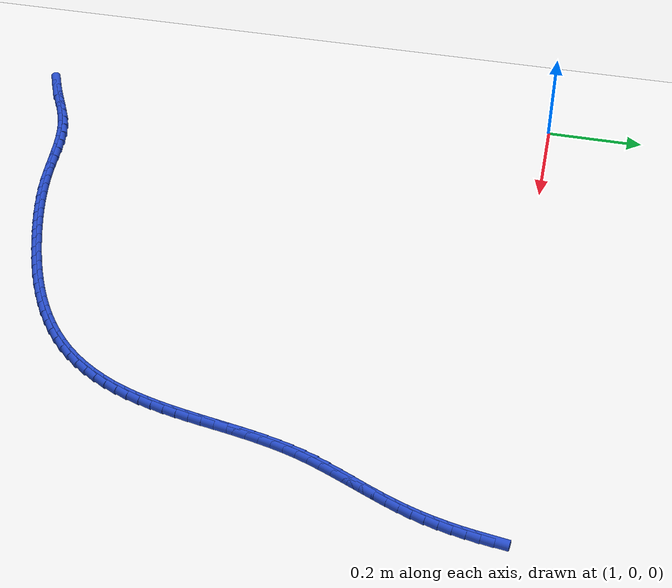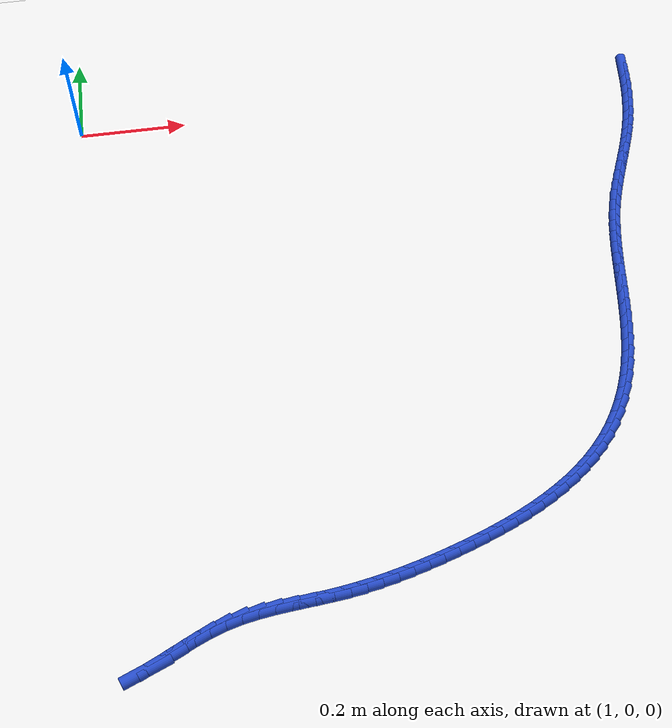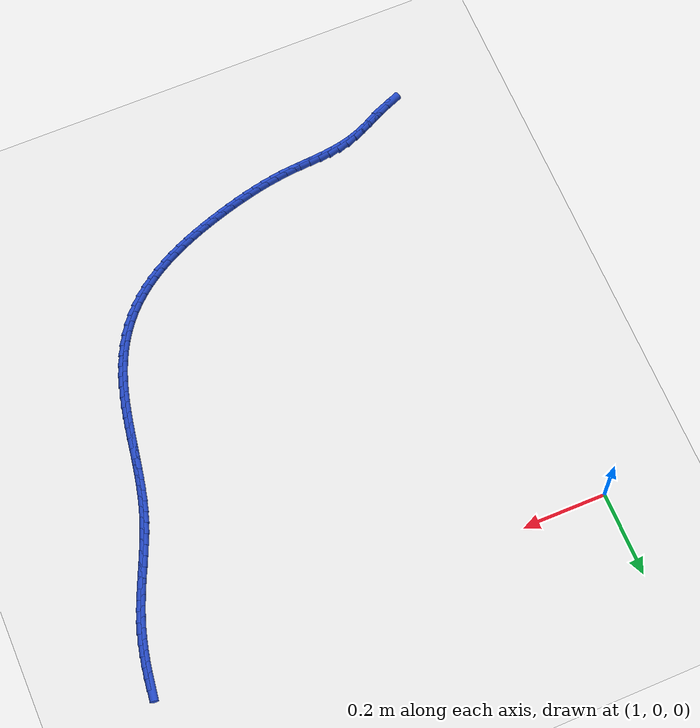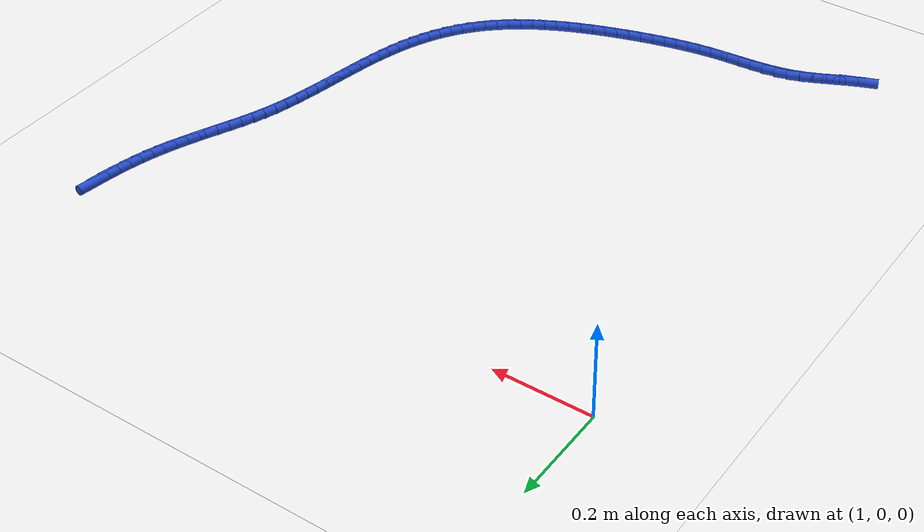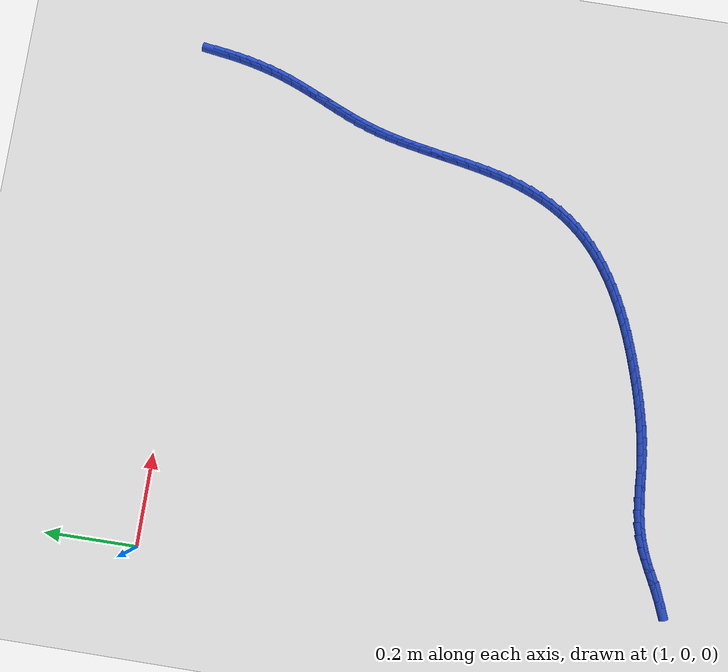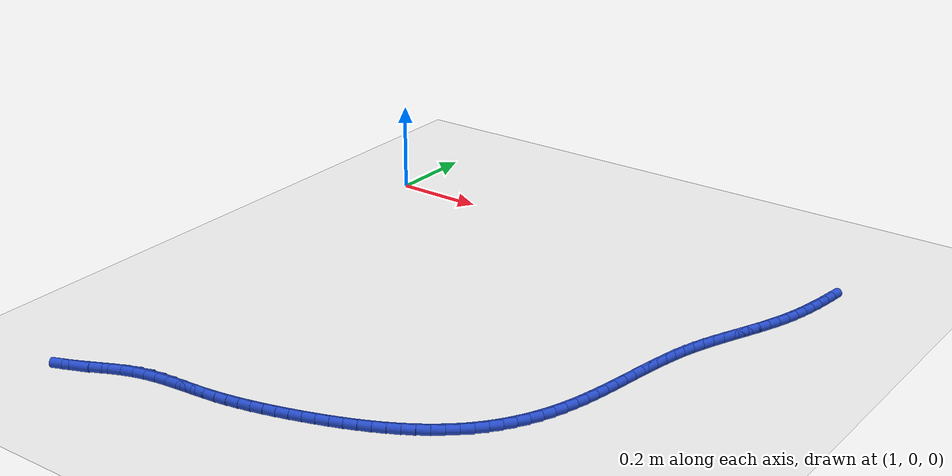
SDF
<sdf version="1.6">
 <world name="default">
  <model name="ground_plane">
   <static>1</static>
   <link name="link">
    <collision name="collision">
     <geometry><plane><normal>0 0 1</normal><size>100 100</size></plane></geometry>
     <surface><friction><ode><mu>100</mu><mu2>50</mu2></ode></friction></surface>
    </collision>
    <visual name="visual">
     <cast_shadows>0</cast_shadows>
     <geometry><plane><normal>0 0 1</normal><size>100 100</size></plane></geometry>
     <material>
      <script><uri>file://media/materials/scripts/gazebo.material</uri><name>Gazebo/WhiteGlow</name></script>
     </material>
    </visual>
   </link>
  </model>
  <model name="line">
   <link name="link_136">
    <pose>2.0923266257567166 0.006850373081256592 0.01 0 1.57 1.424594749346255</pose>
    <collision name="collision">
     <geometry><cylinder><radius>0.01</radius><length>0.08</length></cylinder></geometry>
    </collision>
    <visual name="visual">
     <material>
      <script><name>Gazebo/Blue</name><uri>file://media/materials/scripts/gazebo.material</uri></script>
     </material>
     <geometry><cylinder><radius>0.01</radius><length>0.08</length></cylinder></geometry>
    </visual>
   </link>
   <link name="link_137">
    <pose>2.0886421610577974 -0.0181710773590153 0.01 0 1.57 1.3965579894164302</pose>
    <collision name="collision">
     <geometry><cylinder><radius>0.01</radius><length>0.08</length></cylinder></geometry>
    </collision>
    <visual name="visual">
     <material>
      <script><name>Gazebo/Blue</name><uri>file://media/materials/scripts/gazebo.material</uri></script>
     </material>
     <geometry><cylinder><radius>0.01</radius><length>0.08</length></cylinder></geometry>
    </visual>
   </link>
   <link name="link_138">
    <pose>2.0842695752427405 -0.04301203345912321 0.01 0 1.57 1.3661616045245144</pose>
    <collision name="collision">
     <geometry><cylinder><radius>0.01</radius><length>0.08</length></cylinder></geometry>
    </collision>
    <visual name="visual">
     <material>
      <script><name>Gazebo/Blue</name><uri>file://media/materials/scripts/gazebo.material</uri></script>
     </material>
     <geometry><cylinder><radius>0.01</radius><length>0.08</length></cylinder></geometry>
    </visual>
   </link>
   <link name="link_139">
    <pose>2.0791552781034706 -0.06765452471634334 0.01 0 1.57 1.3334194105742312</pose>
    <collision name="collision">
     <geometry><cylinder><radius>0.01</radius><length>0.08</length></cylinder></geometry>
    </collision>
    <visual name="visual">
     <material>
      <script><name>Gazebo/Blue</name><uri>file://media/materials/scripts/gazebo.material</uri></script>
     </material>
     <geometry><cylinder><radius>0.01</radius><length>0.08</length></cylinder></geometry>
    </visual>
   </link>
   <link name="link_140">
    <pose>2.073245679431913 -0.09208058062795399 0.01 0 1.57 1.298369267174053</pose>
    <collision name="collision">
     <geometry><cylinder><radius>0.01</radius><length>0.08</length></cylinder></geometry>
    </collision>
    <visual name="visual">
     <material>
      <script><name>Gazebo/Blue</name><uri>file://media/materials/scripts/gazebo.material</uri></script>
     </material>
     <geometry><cylinder><radius>0.01</radius><length>0.08</length></cylinder></geometry>
    </visual>
   </link>
   <link name="link_141">
    <pose>2.066487189019994 -0.11627223069123356 0.01 0 1.57 1.2610780446091212</pose>
    <collision name="collision">
     <geometry><cylinder><radius>0.01</radius><length>0.08</length></cylinder></geometry>
    </collision>
    <visual name="visual">
     <material>
      <script><name>Gazebo/Blue</name><uri>file://media/materials/scripts/gazebo.material</uri></script>
     </material>
     <geometry><cylinder><radius>0.01</radius><length>0.08</length></cylinder></geometry>
    </visual>
   </link>
   <link name="link_142">
    <pose>2.0588262166596367 -0.14021150440345817 0.01 0 1.57 1.2231455278694143</pose>
    <collision name="collision">
     <geometry><cylinder><radius>0.01</radius><length>0.08</length></cylinder></geometry>
    </collision>
    <visual name="visual">
     <material>
      <script><name>Gazebo/Blue</name><uri>file://media/materials/scripts/gazebo.material</uri></script>
     </material>
     <geometry><cylinder><radius>0.01</radius><length>0.08</length></cylinder></geometry>
    </visual>
   </link>
   <link name="link_143">
    <pose>2.050245240225723 -0.16389175056670757 0.01 0 1.57 1.1922548836835354</pose>
    <collision name="collision">
     <geometry><cylinder><radius>0.01</radius><length>0.08</length></cylinder></geometry>
    </collision>
    <visual name="visual">
     <material>
      <script><name>Gazebo/Blue</name><uri>file://media/materials/scripts/gazebo.material</uri></script>
     </material>
     <geometry><cylinder><radius>0.01</radius><length>0.08</length></cylinder></geometry>
    </visual>
   </link>
   <link name="link_144">
    <pose>2.040909881189948 -0.18736379423421534 0.01 0 1.57 1.170754326881562</pose>
    <collision name="collision">
     <geometry><cylinder><radius>0.01</radius><length>0.08</length></cylinder></geometry>
    </collision>
    <visual name="visual">
     <material>
      <script><name>Gazebo/Blue</name><uri>file://media/materials/scripts/gazebo.material</uri></script>
     </material>
     <geometry><cylinder><radius>0.01</radius><length>0.08</length></cylinder></geometry>
    </visual>
   </link>
   <link name="link_145">
    <pose>2.0310437490470767 -0.2106966589342718 0.01 0 1.57 1.158536197623795</pose>
    <collision name="collision">
     <geometry><cylinder><radius>0.01</radius><length>0.08</length></cylinder></geometry>
    </collision>
    <visual name="visual">
     <material>
      <script><name>Gazebo/Blue</name><uri>file://media/materials/scripts/gazebo.material</uri></script>
     </material>
     <geometry><cylinder><radius>0.01</radius><length>0.08</length></cylinder></geometry>
    </visual>
   </link>
   <link name="link_146">
    <pose>2.020870476276568 -0.23395937540848907 0.01 0 1.57 1.1555089775220768</pose>
    <collision name="collision">
     <geometry><cylinder><radius>0.01</radius><length>0.08</length></cylinder></geometry>
    </collision>
    <visual name="visual">
     <material>
      <script><name>Gazebo/Blue</name><uri>file://media/materials/scripts/gazebo.material</uri></script>
     </material>
     <geometry><cylinder><radius>0.01</radius><length>0.08</length></cylinder></geometry>
    </visual>
   </link>
   <link name="link_147">
    <pose>2.010613695357884 -0.2572209743984822 0.01 0 1.57 1.1616286495078996</pose>
    <collision name="collision">
     <geometry><cylinder><radius>0.01</radius><length>0.08</length></cylinder></geometry>
    </collision>
    <visual name="visual">
     <material>
      <script><name>Gazebo/Blue</name><uri>file://media/materials/scripts/gazebo.material</uri></script>
     </material>
     <geometry><cylinder><radius>0.01</radius><length>0.08</length></cylinder></geometry>
    </visual>
   </link>
   <link name="link_148">
    <pose>2.000497038770486 -0.28055048664586335 0.01 0 1.57 1.1769056855256357</pose>
    <collision name="collision">
     <geometry><cylinder><radius>0.01</radius><length>0.08</length></cylinder></geometry>
    </collision>
    <visual name="visual">
     <material>
      <script><name>Gazebo/Blue</name><uri>file://media/materials/scripts/gazebo.material</uri></script>
     </material>
     <geometry><cylinder><radius>0.01</radius><length>0.08</length></cylinder></geometry>
    </visual>
   </link>
   <link name="link_149">
    <pose>1.990744138993835 -0.30401694289224745 0.01 0 1.57 1.2013896056759858</pose>
    <collision name="collision">
     <geometry><cylinder><radius>0.01</radius><length>0.08</length></cylinder></geometry>
    </collision>
    <visual name="visual">
     <material>
      <script><name>Gazebo/Blue</name><uri>file://media/materials/scripts/gazebo.material</uri></script>
     </material>
     <geometry><cylinder><radius>0.01</radius><length>0.08</length></cylinder></geometry>
    </visual>
   </link>
   <link name="link_150">
    <pose>1.9815786285073917 -0.3276893738792467 0.01 0 1.57 1.235130532980468</pose>
    <collision name="collision">
     <geometry><cylinder><radius>0.01</radius><length>0.08</length></cylinder></geometry>
    </collision>
    <visual name="visual">
     <material>
      <script><name>Gazebo/Blue</name><uri>file://media/materials/scripts/gazebo.material</uri></script>
     </material>
     <geometry><cylinder><radius>0.01</radius><length>0.08</length></cylinder></geometry>
    </visual>
   </link>
   <link name="link_151">
    <pose>1.9732241397906176 -0.3516368103484753 0.01 0 1.57 1.2758382442044374</pose>
    <collision name="collision">
     <geometry><cylinder><radius>0.01</radius><length>0.08</length></cylinder></geometry>
    </collision>
    <visual name="visual">
     <material>
      <script><name>Gazebo/Blue</name><uri>file://media/materials/scripts/gazebo.material</uri></script>
     </material>
     <geometry><cylinder><radius>0.01</radius><length>0.08</length></cylinder></geometry>
    </visual>
   </link>
   <link name="link_152">
    <pose>1.9658493117810305 -0.3759104510211669 0.01 0 1.57 1.3129147713023677</pose>
    <collision name="collision">
     <geometry><cylinder><radius>0.01</radius><length>0.08</length></cylinder></geometry>
    </collision>
    <visual name="visual">
     <material>
      <script><name>Gazebo/Blue</name><uri>file://media/materials/scripts/gazebo.material</uri></script>
     </material>
     <geometry><cylinder><radius>0.01</radius><length>0.08</length></cylinder></geometry>
    </visual>
   </link>
   <link name="link_153">
    <pose>1.9593691785585983 -0.4004792615630178 0.01 0 1.57 1.34329928753303</pose>
    <collision name="collision">
     <geometry><cylinder><radius>0.01</radius><length>0.08</length></cylinder></geometry>
    </collision>
    <visual name="visual">
     <material>
      <script><name>Gazebo/Blue</name><uri>file://media/materials/scripts/gazebo.material</uri></script>
     </material>
     <geometry><cylinder><radius>0.01</radius><length>0.08</length></cylinder></geometry>
    </visual>
   </link>
   <link name="link_154">
    <pose>1.9536257183505594 -0.4252885187953872 0.01 0 1.57 1.3670300069411367</pose>
    <collision name="collision">
     <geometry><cylinder><radius>0.01</radius><length>0.08</length></cylinder></geometry>
    </collision>
    <visual name="visual">
     <material>
      <script><name>Gazebo/Blue</name><uri>file://media/materials/scripts/gazebo.material</uri></script>
     </material>
     <geometry><cylinder><radius>0.01</radius><length>0.08</length></cylinder></geometry>
    </visual>
   </link>
   <link name="link_155">
    <pose>1.9484609026266309 -0.45028349734846007 0.01 0 1.57 1.3841768456898824</pose>
    <collision name="collision">
     <geometry><cylinder><radius>0.01</radius><length>0.08</length></cylinder></geometry>
    </collision>
    <visual name="visual">
     <material>
      <script><name>Gazebo/Blue</name><uri>file://media/materials/scripts/gazebo.material</uri></script>
     </material>
     <geometry><cylinder><radius>0.01</radius><length>0.08</length></cylinder></geometry>
    </visual>
   </link>
   <link name="link_156">
    <pose>1.943716702856527 -0.47540947185242377 0.01 0 1.57 1.3948100371843772</pose>
    <collision name="collision">
     <geometry><cylinder><radius>0.01</radius><length>0.08</length></cylinder></geometry>
    </collision>
    <visual name="visual">
     <material>
      <script><name>Gazebo/Blue</name><uri>file://media/materials/scripts/gazebo.material</uri></script>
     </material>
     <geometry><cylinder><radius>0.01</radius><length>0.08</length></cylinder></geometry>
    </visual>
   </link>
   <link name="link_157">
    <pose>1.9392350905099653 -0.500611716937463 0.01 0 1.57 1.3989785227933145</pose>
    <collision name="collision">
     <geometry><cylinder><radius>0.01</radius><length>0.08</length></cylinder></geometry>
    </collision>
    <visual name="visual">
     <material>
      <script><name>Gazebo/Blue</name><uri>file://media/materials/scripts/gazebo.material</uri></script>
     </material>
     <geometry><cylinder><radius>0.01</radius><length>0.08</length></cylinder></geometry>
    </visual>
   </link>
   <link name="link_158">
    <pose>1.9348580370566602 -0.5258355072337652 0.01 0 1.57 1.396696992003508</pose>
    <collision name="collision">
     <geometry><cylinder><radius>0.01</radius><length>0.08</length></cylinder></geometry>
    </collision>
    <visual name="visual">
     <material>
      <script><name>Gazebo/Blue</name><uri>file://media/materials/scripts/gazebo.material</uri></script>
     </material>
     <geometry><cylinder><radius>0.01</radius><length>0.08</length></cylinder></geometry>
    </visual>
   </link>
   <link name="link_159">
    <pose>1.9304275139663287 -0.5510261173715152 0.01 0 1.57 1.3879407925468399</pose>
    <collision name="collision">
     <geometry><cylinder><radius>0.01</radius><length>0.08</length></cylinder></geometry>
    </collision>
    <visual name="visual">
     <material>
      <script><name>Gazebo/Blue</name><uri>file://media/materials/scripts/gazebo.material</uri></script>
     </material>
     <geometry><cylinder><radius>0.01</radius><length>0.08</length></cylinder></geometry>
    </visual>
   </link>
   <link name="link_160">
    <pose>1.925785492708686 -0.5761288219808994 0.01 0 1.57 1.3726484011439177</pose>
    <collision name="collision">
     <geometry><cylinder><radius>0.01</radius><length>0.08</length></cylinder></geometry>
    </collision>
    <visual name="visual">
     <material>
      <script><name>Gazebo/Blue</name><uri>file://media/materials/scripts/gazebo.material</uri></script>
     </material>
     <geometry><cylinder><radius>0.01</radius><length>0.08</length></cylinder></geometry>
    </visual>
   </link>
   <link name="link_161">
    <pose>1.9207739447534475 -0.6010888956921052 0.01 0 1.57 1.350731767376287</pose>
    <collision name="collision">
     <geometry><cylinder><radius>0.01</radius><length>0.08</length></cylinder></geometry>
    </collision>
    <visual name="visual">
     <material>
      <script><name>Gazebo/Blue</name><uri>file://media/materials/scripts/gazebo.material</uri></script>
     </material>
     <geometry><cylinder><radius>0.01</radius><length>0.08</length></cylinder></geometry>
    </visual>
   </link>
   <link name="link_162">
    <pose>1.9152348415703306 -0.6258516131353169 0.01 0 1.57 1.3220953995717653</pose>
    <collision name="collision">
     <geometry><cylinder><radius>0.01</radius><length>0.08</length></cylinder></geometry>
    </collision>
    <visual name="visual">
     <material>
      <script><name>Gazebo/Blue</name><uri>file://media/materials/scripts/gazebo.material</uri></script>
     </material>
     <geometry><cylinder><radius>0.01</radius><length>0.08</length></cylinder></geometry>
    </visual>
   </link>
   <link name="link_163">
    <pose>1.90901015462905 -0.650362248940722 0.01 0 1.57 1.286665304462917</pose>
    <collision name="collision">
     <geometry><cylinder><radius>0.01</radius><length>0.08</length></cylinder></geometry>
    </collision>
    <visual name="visual">
     <material>
      <script><name>Gazebo/Blue</name><uri>file://media/materials/scripts/gazebo.material</uri></script>
     </material>
     <geometry><cylinder><radius>0.01</radius><length>0.08</length></cylinder></geometry>
    </visual>
   </link>
   <link name="link_164">
    <pose>1.901941855399322 -0.6745660777385054 0.01 0 1.57 1.24442848906635</pose>
    <collision name="collision">
     <geometry><cylinder><radius>0.01</radius><length>0.08</length></cylinder></geometry>
    </collision>
    <visual name="visual">
     <material>
      <script><name>Gazebo/Blue</name><uri>file://media/materials/scripts/gazebo.material</uri></script>
     </material>
     <geometry><cylinder><radius>0.01</radius><length>0.08</length></cylinder></geometry>
    </visual>
   </link>
   <link name="link_165">
    <pose>1.893871915350862 -0.6984083741588545 0.01 0 1.57 1.1954822727456447</pose>
    <collision name="collision">
     <geometry><cylinder><radius>0.01</radius><length>0.08</length></cylinder></geometry>
    </collision>
    <visual name="visual">
     <material>
      <script><name>Gazebo/Blue</name><uri>file://media/materials/scripts/gazebo.material</uri></script>
     </material>
     <geometry><cylinder><radius>0.01</radius><length>0.08</length></cylinder></geometry>
    </visual>
   </link>
   <link name="link_166">
    <pose>1.884642305953387 -0.7218344128319539 0.01 0 1.57 1.1400915681727657</pose>
    <collision name="collision">
     <geometry><cylinder><radius>0.01</radius><length>0.08</length></cylinder></geometry>
    </collision>
    <visual name="visual">
     <material>
      <script><name>Gazebo/Blue</name><uri>file://media/materials/scripts/gazebo.material</uri></script>
     </material>
     <geometry><cylinder><radius>0.01</radius><length>0.08</length></cylinder></geometry>
    </visual>
   </link>
   <link name="link_167">
    <pose>1.8740950706933377 -0.7447894191053087 0.01 0 1.57 1.0797865748359778</pose>
    <collision name="collision">
     <geometry><cylinder><radius>0.01</radius><length>0.08</length></cylinder></geometry>
    </collision>
    <visual name="visual">
     <material>
      <script><name>Gazebo/Blue</name><uri>file://media/materials/scripts/gazebo.material</uri></script>
     </material>
     <geometry><cylinder><radius>0.01</radius><length>0.08</length></cylinder></geometry>
    </visual>
   </link>
   <link name="link_168">
    <pose>1.8621199450728654 -0.7671859815963109 0.01 0 1.57 1.0173719886341959</pose>
    <collision name="collision">
     <geometry><cylinder><radius>0.01</radius><length>0.08</length></cylinder></geometry>
    </collision>
    <visual name="visual">
     <material>
      <script><name>Gazebo/Blue</name><uri>file://media/materials/scripts/gazebo.material</uri></script>
     </material>
     <geometry><cylinder><radius>0.01</radius><length>0.08</length></cylinder></geometry>
    </visual>
   </link>
   <link name="link_169">
    <pose>1.8487367965347559 -0.7888476366782339 0.01 0 1.57 0.952515757354649</pose>
    <collision name="collision">
     <geometry><cylinder><radius>0.01</radius><length>0.08</length></cylinder></geometry>
    </collision>
    <visual name="visual">
     <material>
      <script><name>Gazebo/Blue</name><uri>file://media/materials/scripts/gazebo.material</uri></script>
     </material>
     <geometry><cylinder><radius>0.01</radius><length>0.08</length></cylinder></geometry>
    </visual>
   </link>
   <link name="link_170">
    <pose>1.833987483128761 -0.8095828720522865 0.01 0 1.57 0.8843621224238258</pose>
    <collision name="collision">
     <geometry><cylinder><radius>0.01</radius><length>0.08</length></cylinder></geometry>
    </collision>
    <visual name="visual">
     <material>
      <script><name>Gazebo/Blue</name><uri>file://media/materials/scripts/gazebo.material</uri></script>
     </material>
     <geometry><cylinder><radius>0.01</radius><length>0.08</length></cylinder></geometry>
    </visual>
   </link>
   <link name="link_171">
    <pose>1.817913864627648 -0.829200182564433 0.01 0 1.57 0.8137886204555785</pose>
    <collision name="collision">
     <geometry><cylinder><radius>0.01</radius><length>0.08</length></cylinder></geometry>
    </collision>
    <visual name="visual">
     <material>
      <script><name>Gazebo/Blue</name><uri>file://media/materials/scripts/gazebo.material</uri></script>
     </material>
     <geometry><cylinder><radius>0.01</radius><length>0.08</length></cylinder></geometry>
    </visual>
   </link>
   <link name="link_172">
    <pose>1.8005698568840551 -0.8475580554288228 0.01 0 1.57 0.7463364694398478</pose>
    <collision name="collision">
     <geometry><cylinder><radius>0.01</radius><length>0.08</length></cylinder></geometry>
    </collision>
    <visual name="visual">
     <material>
      <script><name>Gazebo/Blue</name><uri>file://media/materials/scripts/gazebo.material</uri></script>
     </material>
     <geometry><cylinder><radius>0.01</radius><length>0.08</length></cylinder></geometry>
    </visual>
   </link>
   <link name="link_173">
    <pose>1.782050267193747 -0.8646845404456119 0.01 0 1.57 0.6835697996195023</pose>
    <collision name="collision">
     <geometry><cylinder><radius>0.01</radius><length>0.08</length></cylinder></geometry>
    </collision>
    <visual name="visual">
     <material>
      <script><name>Gazebo/Blue</name><uri>file://media/materials/scripts/gazebo.material</uri></script>
     </material>
     <geometry><cylinder><radius>0.01</radius><length>0.08</length></cylinder></geometry>
    </visual>
   </link>
   <link name="link_174">
    <pose>1.7624585641668287 -0.8806436028717372 0.01 0 1.57 0.6256916613000167</pose>
    <collision name="collision">
     <geometry><cylinder><radius>0.01</radius><length>0.08</length></cylinder></geometry>
    </collision>
    <visual name="visual">
     <material>
      <script><name>Gazebo/Blue</name><uri>file://media/materials/scripts/gazebo.material</uri></script>
     </material>
     <geometry><cylinder><radius>0.01</radius><length>0.08</length></cylinder></geometry>
    </visual>
   </link>
   <link name="link_175">
    <pose>1.7418982164134076 -0.8954992079641338 0.01 0 1.57 0.5727418250994862</pose>
    <collision name="collision">
     <geometry><cylinder><radius>0.01</radius><length>0.08</length></cylinder></geometry>
    </collision>
    <visual name="visual">
     <material>
      <script><name>Gazebo/Blue</name><uri>file://media/materials/scripts/gazebo.material</uri></script>
     </material>
     <geometry><cylinder><radius>0.01</radius><length>0.08</length></cylinder></geometry>
    </visual>
   </link>
   <link name="link_176">
    <pose>1.720472692543588 -0.9093153209797383 0.01 0 1.57 0.5246386877599003</pose>
    <collision name="collision">
     <geometry><cylinder><radius>0.01</radius><length>0.08</length></cylinder></geometry>
    </collision>
    <visual name="visual">
     <material>
      <script><name>Gazebo/Blue</name><uri>file://media/materials/scripts/gazebo.material</uri></script>
     </material>
     <geometry><cylinder><radius>0.01</radius><length>0.08</length></cylinder></geometry>
    </visual>
   </link>
   <link name="link_177">
    <pose>1.6982854611674776 -0.9221559071754858 0.01 0 1.57 0.48121920546266483</pose>
    <collision name="collision">
     <geometry><cylinder><radius>0.01</radius><length>0.08</length></cylinder></geometry>
    </collision>
    <visual name="visual">
     <material>
      <script><name>Gazebo/Blue</name><uri>file://media/materials/scripts/gazebo.material</uri></script>
     </material>
     <geometry><cylinder><radius>0.01</radius><length>0.08</length></cylinder></geometry>
    </visual>
   </link>
   <link name="link_178">
    <pose>1.6754399908951807 -0.934084931808313 0.01 0 1.57 0.44227313344547314</pose>
    <collision name="collision">
     <geometry><cylinder><radius>0.01</radius><length>0.08</length></cylinder></geometry>
    </collision>
    <visual name="visual">
     <material>
      <script><name>Gazebo/Blue</name><uri>file://media/materials/scripts/gazebo.material</uri></script>
     </material>
     <geometry><cylinder><radius>0.01</radius><length>0.08</length></cylinder></geometry>
    </visual>
   </link>
   <link name="link_179">
    <pose>1.652039750336805 -0.9451663601351546 0.01 0 1.57 0.4075702889789494</pose>
    <collision name="collision">
     <geometry><cylinder><radius>0.01</radius><length>0.08</length></cylinder></geometry>
    </collision>
    <visual name="visual">
     <material>
      <script><name>Gazebo/Blue</name><uri>file://media/materials/scripts/gazebo.material</uri></script>
     </material>
     <geometry><cylinder><radius>0.01</radius><length>0.08</length></cylinder></geometry>
    </visual>
   </link>
   <link name="link_180">
    <pose>1.6281882081024555 -0.9554641574129481 0.01 0 1.57 0.3768811215663537</pose>
    <collision name="collision">
     <geometry><cylinder><radius>0.01</radius><length>0.08</length></cylinder></geometry>
    </collision>
    <visual name="visual">
     <material>
      <script><name>Gazebo/Blue</name><uri>file://media/materials/scripts/gazebo.material</uri></script>
     </material>
     <geometry><cylinder><radius>0.01</radius><length>0.08</length></cylinder></geometry>
    </visual>
   </link>
   <link name="link_181">
    <pose>1.6039888328022387 -0.9650422888986282 0.01 0 1.57 0.34999167599358744</pose>
    <collision name="collision">
     <geometry><cylinder><radius>0.01</radius><length>0.08</length></cylinder></geometry>
    </collision>
    <visual name="visual">
     <material>
      <script><name>Gazebo/Blue</name><uri>file://media/materials/scripts/gazebo.material</uri></script>
     </material>
     <geometry><cylinder><radius>0.01</radius><length>0.08</length></cylinder></geometry>
    </visual>
   </link>
   <link name="link_182">
    <pose>1.5795450930462605 -0.9739647198491308 0.01 0 1.57 0.3267143119889998</pose>
    <collision name="collision">
     <geometry><cylinder><radius>0.01</radius><length>0.08</length></cylinder></geometry>
    </collision>
    <visual name="visual">
     <material>
      <script><name>Gazebo/Blue</name><uri>file://media/materials/scripts/gazebo.material</uri></script>
     </material>
     <geometry><cylinder><radius>0.01</radius><length>0.08</length></cylinder></geometry>
    </visual>
   </link>
   <link name="link_183">
    <pose>1.5549604574446259 -0.9822954155213925 0.01 0 1.57 0.30686340035731263</pose>
    <collision name="collision">
     <geometry><cylinder><radius>0.01</radius><length>0.08</length></cylinder></geometry>
    </collision>
    <visual name="visual">
     <material>
      <script><name>Gazebo/Blue</name><uri>file://media/materials/scripts/gazebo.material</uri></script>
     </material>
     <geometry><cylinder><radius>0.01</radius><length>0.08</length></cylinder></geometry>
    </visual>
   </link>
   <link name="link_184">
    <pose>1.5303376364291503 -0.9900977108631799 0.01 0 1.57 0.2883117639818852</pose>
    <collision name="collision">
     <geometry><cylinder><radius>0.01</radius><length>0.08</length></cylinder></geometry>
    </collision>
    <visual name="visual">
     <material>
      <script><name>Gazebo/Blue</name><uri>file://media/materials/scripts/gazebo.material</uri></script>
     </material>
     <geometry><cylinder><radius>0.01</radius><length>0.08</length></cylinder></geometry>
    </visual>
   </link>
   <link name="link_185">
    <pose>1.505731597803031 -0.9973952501362313 0.01 0 1.57 0.2678433563192016</pose>
    <collision name="collision">
     <geometry><cylinder><radius>0.01</radius><length>0.08</length></cylinder></geometry>
    </collision>
    <visual name="visual">
     <material>
      <script><name>Gazebo/Blue</name><uri>file://media/materials/scripts/gazebo.material</uri></script>
     </material>
     <geometry><cylinder><radius>0.01</radius><length>0.08</length></cylinder></geometry>
    </visual>
   </link>
   <link name="link_186">
    <pose>1.481121983543355 -1.0041490557106774 0.01 0 1.57 0.24518989493744278</pose>
    <collision name="collision">
     <geometry><cylinder><radius>0.01</radius><length>0.08</length></cylinder></geometry>
    </collision>
    <visual name="visual">
     <material>
      <script><name>Gazebo/Blue</name><uri>file://media/materials/scripts/gazebo.material</uri></script>
     </material>
     <geometry><cylinder><radius>0.01</radius><length>0.08</length></cylinder></geometry>
    </visual>
   </link>
   <link name="link_187">
    <pose>1.4564817986409238 -1.0103146323187149 0.01 0 1.57 0.22038387044896915</pose>
    <collision name="collision">
     <geometry><cylinder><radius>0.01</radius><length>0.08</length></cylinder></geometry>
    </collision>
    <visual name="visual">
     <material>
      <script><name>Gazebo/Blue</name><uri>file://media/materials/scripts/gazebo.material</uri></script>
     </material>
     <geometry><cylinder><radius>0.01</radius><length>0.08</length></cylinder></geometry>
    </visual>
   </link>
   <link name="link_188">
    <pose>1.4317840480865425 -1.0158474846925407 0.01 0 1.57 0.19348039881659546</pose>
    <collision name="collision">
     <geometry><cylinder><radius>0.01</radius><length>0.08</length></cylinder></geometry>
    </collision>
    <visual name="visual">
     <material>
      <script><name>Gazebo/Blue</name><uri>file://media/materials/scripts/gazebo.material</uri></script>
     </material>
     <geometry><cylinder><radius>0.01</radius><length>0.08</length></cylinder></geometry>
    </visual>
   </link>
   <link name="link_189">
    <pose>1.4070017368710115 -1.020703117564351 0.01 0 1.57 0.16456001318542385</pose>
    <collision name="collision">
     <geometry><cylinder><radius>0.01</radius><length>0.08</length></cylinder></geometry>
    </collision>
    <visual name="visual">
     <material>
      <script><name>Gazebo/Blue</name><uri>file://media/materials/scripts/gazebo.material</uri></script>
     </material>
     <geometry><cylinder><radius>0.01</radius><length>0.08</length></cylinder></geometry>
    </visual>
   </link>
   <link name="link_190">
    <pose>1.3821078699851361 -1.024837035666343 0.01 0 1.57 0.1337309149684595</pose>
    <collision name="collision">
     <geometry><cylinder><radius>0.01</radius><length>0.08</length></cylinder></geometry>
    </collision>
    <visual name="visual">
     <material>
      <script><name>Gazebo/Blue</name><uri>file://media/materials/scripts/gazebo.material</uri></script>
     </material>
     <geometry><cylinder><radius>0.01</radius><length>0.08</length></cylinder></geometry>
    </visual>
   </link>
   <link name="link_191">
    <pose>1.3570754524197177 -1.0282047437307134 0.01 0 1.57 0.10156355209208622</pose>
    <collision name="collision">
     <geometry><cylinder><radius>0.01</radius><length>0.08</length></cylinder></geometry>
    </collision>
    <visual name="visual">
     <material>
      <script><name>Gazebo/Blue</name><uri>file://media/materials/scripts/gazebo.material</uri></script>
     </material>
     <geometry><cylinder><radius>0.01</radius><length>0.08</length></cylinder></geometry>
    </visual>
   </link>
   <link name="link_192">
    <pose>1.3318798939442307 -1.0307725292592649 0.01 0 1.57 0.07823278586877519</pose>
    <collision name="collision">
     <geometry><cylinder><radius>0.01</radius><length>0.08</length></cylinder></geometry>
    </collision>
    <visual name="visual">
     <material>
      <script><name>Gazebo/Blue</name><uri>file://media/materials/scripts/gazebo.material</uri></script>
     </material>
     <geometry><cylinder><radius>0.01</radius><length>0.08</length></cylinder></geometry>
    </visual>
   </link>
   <link name="link_193">
    <pose>1.3065526543486405 -1.0327580020334357 0.01 0 1.57 0.07372800493676657</pose>
    <collision name="collision">
     <geometry><cylinder><radius>0.01</radius><length>0.08</length></cylinder></geometry>
    </collision>
    <visual name="visual">
     <material>
      <script><name>Gazebo/Blue</name><uri>file://media/materials/scripts/gazebo.material</uri></script>
     </material>
     <geometry><cylinder><radius>0.01</radius><length>0.08</length></cylinder></geometry>
    </visual>
   </link>
   <link name="link_194">
    <pose>1.2811816577258608 -1.034631951712387 0.01 0 1.57 0.08839408441972549</pose>
    <collision name="collision">
     <geometry><cylinder><radius>0.01</radius><length>0.08</length></cylinder></geometry>
    </collision>
    <visual name="visual">
     <material>
      <script><name>Gazebo/Blue</name><uri>file://media/materials/scripts/gazebo.material</uri></script>
     </material>
     <geometry><cylinder><radius>0.01</radius><length>0.08</length></cylinder></geometry>
    </visual>
   </link>
   <link name="link_195">
    <pose>1.2558573158053765 -1.0368763222508217 0.01 0 1.57 0.12233445529655837</pose>
    <collision name="collision">
     <geometry><cylinder><radius>0.01</radius><length>0.08</length></cylinder></geometry>
    </collision>
    <visual name="visual">
     <material>
      <script><name>Gazebo/Blue</name><uri>file://media/materials/scripts/gazebo.material</uri></script>
     </material>
     <geometry><cylinder><radius>0.01</radius><length>0.08</length></cylinder></geometry>
    </visual>
   </link>
   <link name="link_196">
    <pose>1.2306700403166702 -1.0399730576034423 0.01 0 1.57 0.17569676025501665</pose>
    <collision name="collision">
     <geometry><cylinder><radius>0.01</radius><length>0.08</length></cylinder></geometry>
    </collision>
    <visual name="visual">
     <material>
      <script><name>Gazebo/Blue</name><uri>file://media/materials/scripts/gazebo.material</uri></script>
     </material>
     <geometry><cylinder><radius>0.01</radius><length>0.08</length></cylinder></geometry>
    </visual>
   </link>
   <link name="link_197">
    <pose>1.2057102429892275 -1.0444041017249515 0.01 0 1.57 0.248291919017235</pose>
    <collision name="collision">
     <geometry><cylinder><radius>0.01</radius><length>0.08</length></cylinder></geometry>
    </collision>
    <visual name="visual">
     <material>
      <script><name>Gazebo/Blue</name><uri>file://media/materials/scripts/gazebo.material</uri></script>
     </material>
     <geometry><cylinder><radius>0.01</radius><length>0.08</length></cylinder></geometry>
    </visual>
   </link>
   <link name="link_198">
    <pose>1.1810683355525304 -1.0506513985700519 0.01 0 1.57 0.3350465880212999</pose>
    <collision name="collision">
     <geometry><cylinder><radius>0.01</radius><length>0.08</length></cylinder></geometry>
    </collision>
    <visual name="visual">
     <material>
      <script><name>Gazebo/Blue</name><uri>file://media/materials/scripts/gazebo.material</uri></script>
     </material>
     <geometry><cylinder><radius>0.01</radius><length>0.08</length></cylinder></geometry>
    </visual>
   </link>
   <link name="link_199">
    <pose>1.1568224839225048 -1.0590931579472278 0.01 0 1.57 0.4040699280776672</pose>
    <collision name="collision">
     <geometry><cylinder><radius>0.01</radius><length>0.08</length></cylinder></geometry>
    </collision>
    <visual name="visual">
     <material>
      <script><name>Gazebo/Blue</name><uri>file://media/materials/scripts/gazebo.material</uri></script>
     </material>
     <geometry><cylinder><radius>0.01</radius><length>0.08</length></cylinder></geometry>
    </visual>
   </link>
   <link name="link_200">
    <pose>1.1329553661060612 -1.069298712682847 0.01 0 1.57 0.44249284307527925</pose>
    <collision name="collision">
     <geometry><cylinder><radius>0.01</radius><length>0.08</length></cylinder></geometry>
    </collision>
    <visual name="visual">
     <material>
      <script><name>Gazebo/Blue</name><uri>file://media/materials/scripts/gazebo.material</uri></script>
     </material>
     <geometry><cylinder><radius>0.01</radius><length>0.08</length></cylinder></geometry>
    </visual>
   </link>
   <link name="link_201">
    <pose>1.109404831129323 -1.0804576498211504 0.01 0 1.57 0.45160976751320087</pose>
    <collision name="collision">
     <geometry><cylinder><radius>0.01</radius><length>0.08</length></cylinder></geometry>
    </collision>
    <visual name="visual">
     <material>
      <script><name>Gazebo/Blue</name><uri>file://media/materials/scripts/gazebo.material</uri></script>
     </material>
     <geometry><cylinder><radius>0.01</radius><length>0.08</length></cylinder></geometry>
    </visual>
   </link>
   <link name="link_202">
    <pose>1.0861084691998935 -1.0917573639576768 0.01 0 1.57 0.43113053665003115</pose>
    <collision name="collision">
     <geometry><cylinder><radius>0.01</radius><length>0.08</length></cylinder></geometry>
    </collision>
    <visual name="visual">
     <material>
      <script><name>Gazebo/Blue</name><uri>file://media/materials/scripts/gazebo.material</uri></script>
     </material>
     <geometry><cylinder><radius>0.01</radius><length>0.08</length></cylinder></geometry>
    </visual>
   </link>
   <link name="link_203">
    <pose>1.0630038705253773 -1.1023852496879618 0.01 0 1.57 0.3787549119149347</pose>
    <collision name="collision">
     <geometry><cylinder><radius>0.01</radius><length>0.08</length></cylinder></geometry>
    </collision>
    <visual name="visual">
     <material>
      <script><name>Gazebo/Blue</name><uri>file://media/materials/scripts/gazebo.material</uri></script>
     </material>
     <geometry><cylinder><radius>0.01</radius><length>0.08</length></cylinder></geometry>
    </visual>
   </link>
  </model>
 </world>
</sdf>
